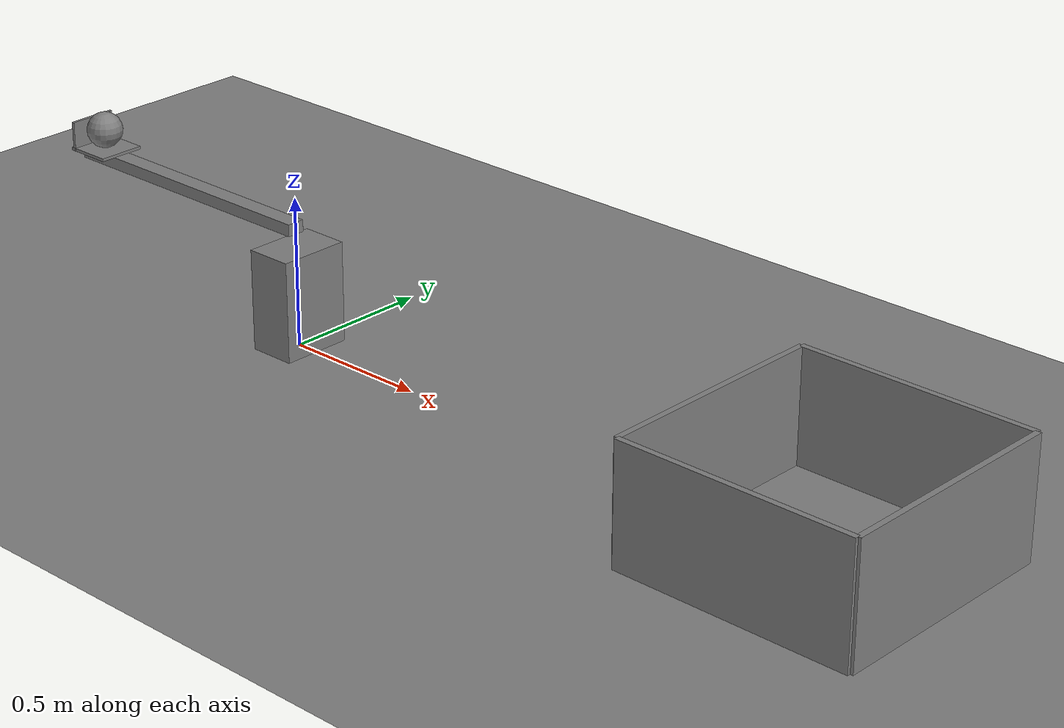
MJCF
<mujoco model="catapult_fixture">
  <option timestep="0.002" gravity="0 0 -9.81" integrator="implicitfast"/>
  <worldbody>
    <geom name="floor" type="plane" pos="0 0 0" size="8 8 0.1"/>
    <geom name="catapult_base" type="box" pos="0 0 0.170" size="0.08 0.12 0.170"/>
    <body name="catapult_arm" pos="0 0 0.4">
      <joint name="catapult_hinge" type="hinge" axis="0 1 0" limited="true" range="0 55" stiffness="2.6" springref="150" damping="0.05" armature="0.01" solreflimit="0.002 1" solimplimit="0.99 0.999 0.001"/>
      <geom name="catapult_beam" type="box" pos="-0.500 0 0" size="0.500 0.03 0.02" mass="0.3"/>
      <geom name="catapult_cup_floor" type="box" pos="-0.920 0 0.025" size="0.08 0.08 0.005" mass="0.02"/>
      <geom name="catapult_cup_back" type="box" pos="-0.985 0 0.07" size="0.005 0.08 0.05" mass="0.01"/>
    </body>
    <body name="ball" pos="-0.920 0 0.490">
      <freejoint name="ball_free"/>
      <geom name="ball" type="sphere" size="0.06" mass="0.15" condim="6" friction="0.8 0.01 0.004" solref="0.01 1"/>
    </body>
    <body name="bucket" pos="2.080 0 0">
      <geom name="bucket_base" type="box" pos="0 0 0.01" size="0.4 0.4 0.01"/>
      <geom name="bucket_near" type="box" pos="-0.4 0 0.2" size="0.01 0.4 0.2"/>
      <geom name="bucket_far" type="box" pos="0.4 0 0.2" size="0.01 0.4 0.2"/>
      <geom name="bucket_left" type="box" pos="0 0.4 0.2" size="0.4 0.01 0.2"/>
      <geom name="bucket_right" type="box" pos="0 -0.4 0.2" size="0.4 0.01 0.2"/>
    </body>
  </worldbody>
</mujoco>
